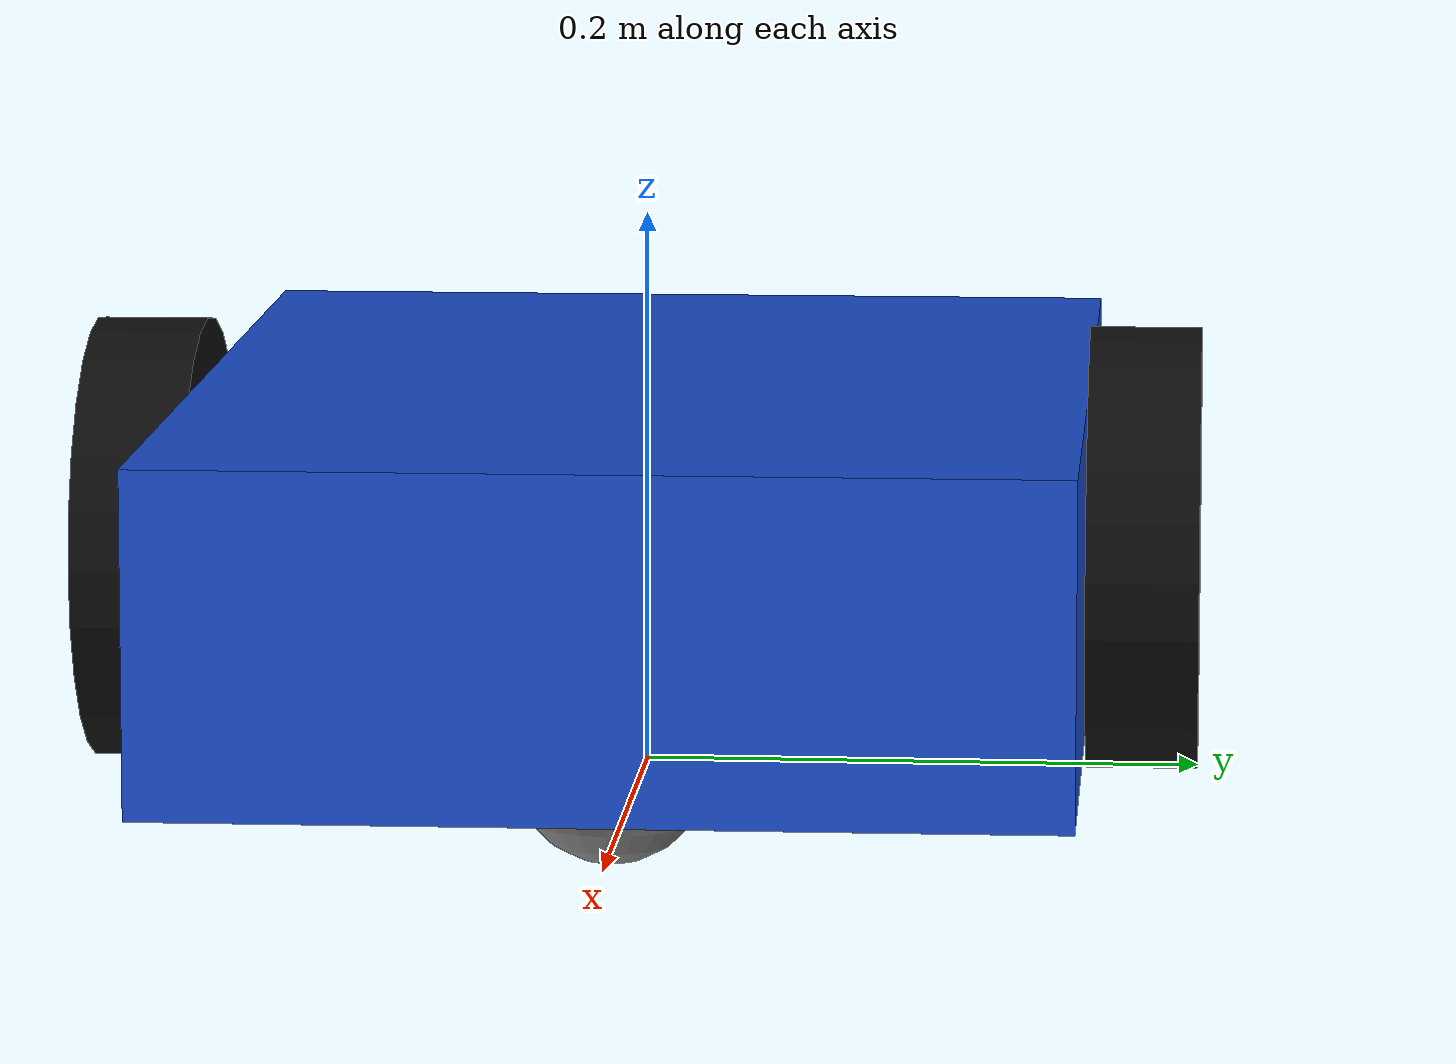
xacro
<?xml version="1.0"?>

<robot xmlns:xacro="http://www.ros.org/wiki/xacro"
       name="robot_diferencial">

  <!-- Parámetros generales -->

  <xacro:property name="base_length" value="0.45"/>
  <xacro:property name="base_width" value="0.32"/>
  <xacro:property name="base_height" value="0.12"/>

  <xacro:property name="wheel_radius" value="0.08"/>
  <xacro:property name="wheel_width" value="0.04"/>
  <xacro:property name="wheel_separation" value="0.36"/>

  <!-- Enlace de referencia en el suelo -->

  <link name="base_footprint"/>

  <!-- Chasis -->

  <link name="base_link">
    <visual>
      <geometry>
        <box size="${base_length} ${base_width} ${base_height}"/>
      </geometry>

      <material name="blue">
        <color rgba="0.1 0.3 0.8 1.0"/>
      </material>
    </visual>
  </link>

  <joint name="base_footprint_joint" type="fixed">
    <parent link="base_footprint"/>
    <child link="base_link"/>
    <origin xyz="0 0 ${wheel_radius}" rpy="0 0 0"/>
  </joint>

  <!-- Rueda izquierda -->

  <link name="left_wheel_link">
    <visual>
      <geometry>
        <cylinder radius="${wheel_radius}" length="${wheel_width}"/>
      </geometry>

      <material name="black">
        <color rgba="0.05 0.05 0.05 1.0"/>
      </material>
    </visual>
  </link>

  <joint name="left_wheel_joint" type="continuous">
    <parent link="base_link"/>
    <child link="left_wheel_link"/>

    <origin
      xyz="0 ${wheel_separation / 2.0} 0"
      rpy="${pi / 2.0} 0 0"/>

    <axis xyz="0 0 1"/>
  </joint>

  <!-- Rueda derecha -->

  <link name="right_wheel_link">
    <visual>
      <geometry>
        <cylinder radius="${wheel_radius}" length="${wheel_width}"/>
      </geometry>

      <material name="black"/>
    </visual>
  </link>

  <joint name="right_wheel_joint" type="continuous">
    <parent link="base_link"/>
    <child link="right_wheel_link"/>

    <origin
      xyz="0 ${-wheel_separation / 2.0} 0"
      rpy="${pi / 2.0} 0 0"/>

    <axis xyz="0 0 1"/>
  </joint>

  <!-- Rueda de apoyo frontal -->

  <link name="caster_link">
    <visual>
      <geometry>
        <sphere radius="0.035"/>
      </geometry>

      <material name="gray">
        <color rgba="0.5 0.5 0.5 1.0"/>
      </material>
    </visual>
  </link>

  <joint name="caster_joint" type="fixed">
    <parent link="base_link"/>
    <child link="caster_link"/>
    <origin xyz="0.16 0 -0.05" rpy="0 0 0"/>
  </joint>

</robot>
